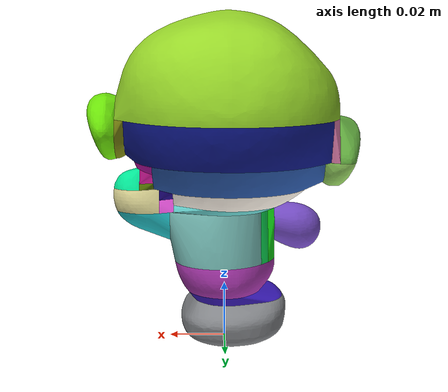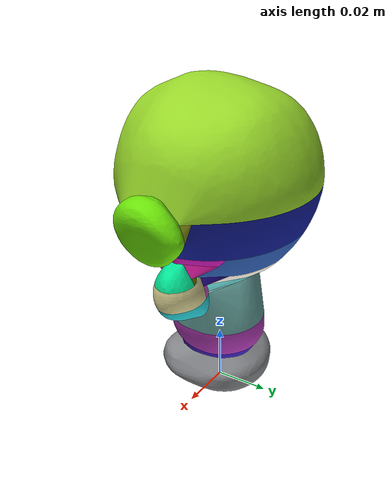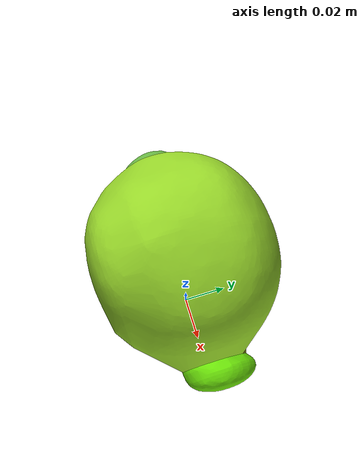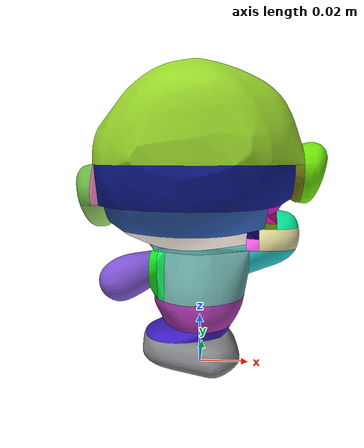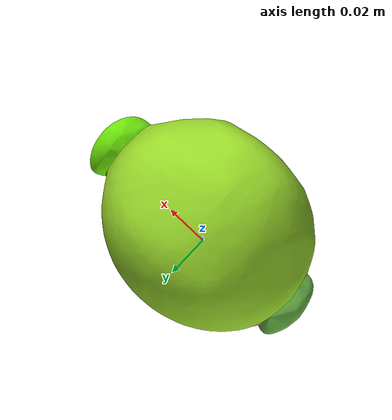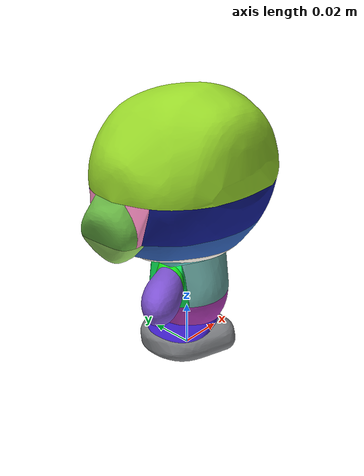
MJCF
<mujoco model="toy">
  <default>
    <default class="visual">
      <geom group="1" type="mesh" contype="0" conaffinity="0"/>
    </default>
    <default class="collision">
      <geom group="0" type="mesh"/>
    </default>
  </default>
  <asset>
    <texture type="2d" name="material_0" file="material_0.png"/>
    <material name="material_0" texture="material_0" specular="0.4000000000000001" shininess="0.000999999"/>
    <mesh name="toy" file="toy.obj"/>
    <mesh name="toy_collision_0" file="toy_collision_0.obj"/>
    <mesh name="toy_collision_1" file="toy_collision_1.obj"/>
    <mesh name="toy_collision_2" file="toy_collision_2.obj"/>
    <mesh name="toy_collision_3" file="toy_collision_3.obj"/>
    <mesh name="toy_collision_4" file="toy_collision_4.obj"/>
    <mesh name="toy_collision_5" file="toy_collision_5.obj"/>
    <mesh name="toy_collision_6" file="toy_collision_6.obj"/>
    <mesh name="toy_collision_7" file="toy_collision_7.obj"/>
    <mesh name="toy_collision_8" file="toy_collision_8.obj"/>
    <mesh name="toy_collision_9" file="toy_collision_9.obj"/>
    <mesh name="toy_collision_10" file="toy_collision_10.obj"/>
    <mesh name="toy_collision_11" file="toy_collision_11.obj"/>
    <mesh name="toy_collision_12" file="toy_collision_12.obj"/>
    <mesh name="toy_collision_13" file="toy_collision_13.obj"/>
    <mesh name="toy_collision_14" file="toy_collision_14.obj"/>
    <mesh name="toy_collision_15" file="toy_collision_15.obj"/>
    <mesh name="toy_collision_16" file="toy_collision_16.obj"/>
    <mesh name="toy_collision_17" file="toy_collision_17.obj"/>
    <mesh name="toy_collision_18" file="toy_collision_18.obj"/>
    <mesh name="toy_collision_19" file="toy_collision_19.obj"/>
    <mesh name="toy_collision_20" file="toy_collision_20.obj"/>
    <mesh name="toy_collision_21" file="toy_collision_21.obj"/>
    <mesh name="toy_collision_22" file="toy_collision_22.obj"/>
    <mesh name="toy_collision_23" file="toy_collision_23.obj"/>
    <mesh name="toy_collision_24" file="toy_collision_24.obj"/>
  </asset>
  <worldbody>
    <body>
      <body name="object">
        <geom material="material_0" mesh="toy" class="visual"/>
        <geom mesh="toy_collision_0" rgba="0.5020139159665998 0.3319515446450423 0.8390167144019891 1" class="collision"/>
        <geom mesh="toy_collision_1" rgba="0.4291297812495112 0.9007862534603677 0.03190320683659198 1" class="collision"/>
        <geom mesh="toy_collision_2" rgba="0.829271630338164 0.09651724390744043 0.6068686581446854 1" class="collision"/>
        <geom mesh="toy_collision_3" rgba="0.14420602656946901 0.7944078039746498 0.8195196091266006 1" class="collision"/>
        <geom mesh="toy_collision_4" rgba="0.5946917060076276 0.8382516303718303 0.38377675867901173 1" class="collision"/>
        <geom mesh="toy_collision_5" rgba="0.24215959053397662 0.1131046755859797 0.7711383779570138 1" class="collision"/>
        <geom mesh="toy_collision_6" rgba="0.7002718649989436 0.22963168009716617 0.7143937829308249 1" class="collision"/>
        <geom mesh="toy_collision_7" rgba="0.5195126598880585 0.5286553635822594 0.5433065263167592 1" class="collision"/>
        <geom mesh="toy_collision_8" rgba="0.606963270138753 0.8561768329875052 0.16558274996021294 1" class="collision"/>
        <geom mesh="toy_collision_9" rgba="0.39801244251153434 0.818153782029801 0.8053302783598599 1" class="collision"/>
        <geom mesh="toy_collision_10" rgba="0.41047016082648513 0.7146061556081419 0.26806619165381296 1" class="collision"/>
        <geom mesh="toy_collision_11" rgba="0.8893546768344152 0.860120797369703 0.6011127851501291 1" class="collision"/>
        <geom mesh="toy_collision_12" rgba="0.4272440765714759 0.6865286084683501 0.6612696056797175 1" class="collision"/>
        <geom mesh="toy_collision_13" rgba="0.9836562391030396 0.9487098972040869 0.9020714529786158 1" class="collision"/>
        <geom mesh="toy_collision_14" rgba="0.1684735028675668 0.3535135727175187 0.6766948890939016 1" class="collision"/>
        <geom mesh="toy_collision_15" rgba="0.824281574544283 0.09199592453100314 0.7276231233909486 1" class="collision"/>
        <geom mesh="toy_collision_16" rgba="0.0948734205774251 0.9625085144423667 0.11124069687940252 1" class="collision"/>
        <geom mesh="toy_collision_17" rgba="0.12385115446292005 0.029866989689238288 0.5134655243248831 1" class="collision"/>
        <geom mesh="toy_collision_18" rgba="0.45897225315674917 0.49692184312135834 0.05388461216421103 1" class="collision"/>
        <geom mesh="toy_collision_19" rgba="0.9983745632237488 0.36968400655759937 0.9505480368551998 1" class="collision"/>
        <geom mesh="toy_collision_20" rgba="0.06081343853509058 0.9477853764893204 0.3660007444321909 1" class="collision"/>
        <geom mesh="toy_collision_21" rgba="0.008983703776340501 0.910234374810923 0.5964474800849736 1" class="collision"/>
        <geom mesh="toy_collision_22" rgba="0.9859367515937568 0.5592296224142018 0.7672214647407579 1" class="collision"/>
        <geom mesh="toy_collision_23" rgba="0.0620296859570858 0.10205001762489663 0.5556521819281155 1" class="collision"/>
        <geom mesh="toy_collision_24" rgba="0.3162479224396656 0.4383572672360324 0.005431108685974628 1" class="collision"/>
      </body>
    </body>
  </worldbody>
</mujoco>
